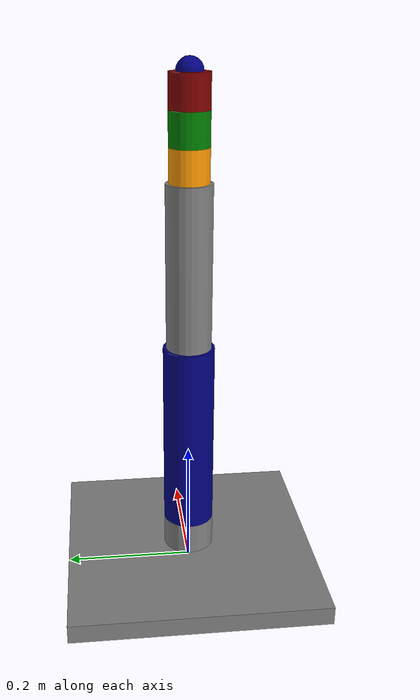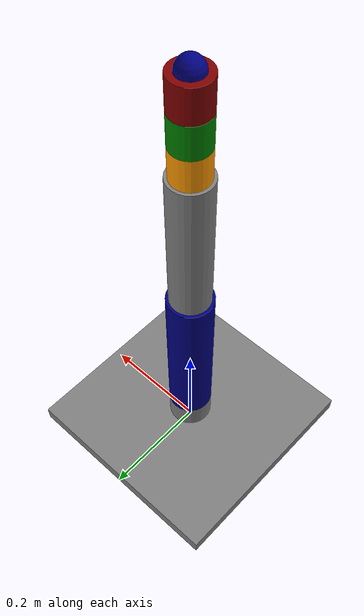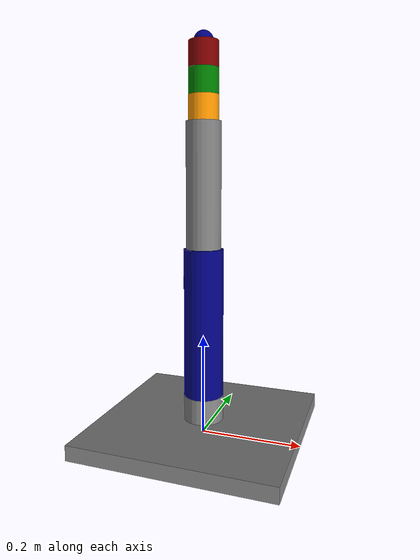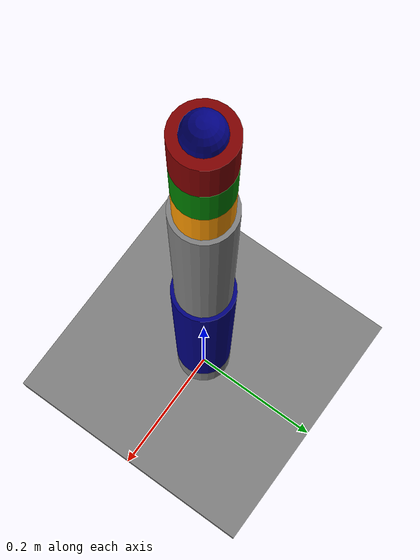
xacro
<?xml version="1.0"?>

<robot name="six_dof_arm" xmlns:xacro="http://www.ros.org/wiki/xacro">
    <xacro:include filename="$(find six_dof_arm)/urdf/common_properties.urdf.xacro"/>
    <xacro:include filename="$(find six_dof_arm)/urdf/six_dof_arm_links.xacro"/>
    <xacro:include filename="$(find six_dof_arm)/urdf/six_dof_arm_gazebo.xacro"/>
</robot>

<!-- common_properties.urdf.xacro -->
<robot  xmlns:xacro="http://www.ros.org/wiki/xacro">

    <material name="green">
        <color rgba="0 0.5 0 1" />
    </material>

    <material name="red">
        <color rgba="0.5 0 0 1" />
    </material>

    <material name="orange">
        <color rgba="1 0.6 0 1" />
    </material>

    <material name="grey">
        <color rgba="0.5 0.5 0.5 1" />
    </material>

    <material name="blue">
        <color rgba="0 0 0.5 1" />
    </material>

    <xacro:macro name="box_inertia" params="m x y z o_xyz o_rpy" >
        <inertial>
            <mass value="${m}" />
            <origin xyz="${o_xyz}" rpy="${o_rpy}" />
            <inertia
                ixx="${(1/12.0)*m*(y**2 + z**2)}"  ixy="0.0"  ixz="0.0"
                iyy="${(1/12.0)*m*(x**2 + z**2)}"  iyz="0.0"
                izz="${(1/12.0)*m*(x**2 + y**2)}"
            />
        </inertial>
    </xacro:macro>

    <xacro:macro name="solid_cylinder_inertia" params="m r h o_xyz o_rpy" >
        <inertial>
            <mass value="${m}" />
            <origin xyz="${o_xyz}" rpy="${o_rpy}" />
            <inertia
                ixx="${(1/12.0)*m*(3*r**2 + h**2)}"  ixy="0.0"  ixz="0.0"
                iyy="${(1/12.0)*m*(3*r**2 + h**2)}"  iyz="0.0"
                izz="${(1/2.0)*m*(r**2)}"
            />
        </inertial>
    </xacro:macro>

    <xacro:macro name="solid_sphere_inertia" params="m r o_xyz o_rpy" >
        <inertial>
            <mass value="${m}" />
            <origin xyz="${o_xyz}" rpy="${o_rpy}" />
            <inertia
                ixx="${(2/5.0)*m*(r**2)}"  ixy="0.0"  ixz="0.0"
                iyy="${(2/5.0)*m*(r**2)}"  iyz="0.0"
                izz="${(2/5.0)*m*(r**2)}"
            />
        </inertial>
    </xacro:macro>
</robot>

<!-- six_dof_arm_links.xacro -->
<robot  xmlns:xacro="http://www.ros.org/wiki/xacro">
    <!-- XACRO definitions -->
    <xacro:property name="base_length" value="0.4"/>
    <xacro:property name="base_width" value="0.4"/>
    <xacro:property name="base_height" value="0.03"/>

    <xacro:property name="link1_length" value="0.05"/>
    <xacro:property name="link1_radius" value="0.04"/>

    <xacro:property name="link2_length" value="0.3"/>
    <xacro:property name="link2_radius" value="0.04"/>

    <xacro:property name="link3_length" value="0.25"/>
    <xacro:property name="link3_radius" value="0.035"/>

    <xacro:property name="link4_length" value="0.05"/>
    <xacro:property name="link4_radius" value="0.03"/>

    <xacro:property name="link5_length" value="0.05"/>
    <xacro:property name="link5_radius" value="0.03"/>

    <xacro:property name="link6_length" value="0.05"/>
    <xacro:property name="link6_radius" value="0.03"/>

    <xacro:property name="end_effector_radius" value="0.02"/>

    <!-- LINKS -->
    <link name="base_footprint"></link>

    <link name="base_link">
        <visual>
            <geometry>
                <box size="${base_length} ${base_width} ${base_height}"/>
            </geometry>
            <origin xyz="0 0 0" rpy="0 0 0"/>
            <material name="grey"/>
        </visual>
        <xacro:box_inertia m="3.0" x="${base_length}" y="${base_width}" z="${base_height}" o_xyz="0 0 0" o_rpy="0 0 0"/>
        <collision>
            <geometry>
                <box size="${base_length} ${base_width} ${base_height}"/>
            </geometry>
            <origin xyz="0 0 0" rpy="0 0 0"/>
        </collision>
    </link>

    <xacro:macro name="cylindrical_link" params="name length radius mass color">
        <link name="${name}">
            <visual>
                <geometry>
                    <cylinder length="${length}" radius="${radius}"/>
                </geometry>
                <origin xyz="0 0 ${length/2}" rpy="0 0 0"/>
                <material name="${color}"/>
            </visual>
            <xacro:solid_cylinder_inertia m="${mass}" r="${radius}" h="${length}" o_xyz="0 0 ${length/2}" o_rpy="0 0 0"/>
            <collision>
                <geometry>
                    <cylinder length="${length}" radius="${radius}"/>
                </geometry>
                <origin xyz="0 0 ${length/2}" rpy="0 0 0"/>
            </collision>
        </link>
    </xacro:macro>

    <xacro:cylindrical_link name="link1" length="${link1_length}" radius="${link1_radius}" mass="1.5" color="grey"/>
    <xacro:cylindrical_link name="link2" length="${link2_length}" radius="${link2_radius}" mass="1.0" color="blue"/>
    <xacro:cylindrical_link name="link3" length="${link3_length}" radius="${link3_radius}" mass="0.8" color="grey"/>
    <xacro:cylindrical_link name="link4" length="${link4_length}" radius="${link4_radius}" mass="0.6" color="orange"/>
    <xacro:cylindrical_link name="link5" length="${link5_length}" radius="${link5_radius}" mass="0.4" color="green"/>
    <xacro:cylindrical_link name="link6" length="${link6_length}" radius="${link6_radius}" mass="0.2" color="red"/>

    <link name="end_effector">
        <visual>
            <geometry>
                <sphere radius="${end_effector_radius}"/>
            </geometry>
            <origin xyz="0 0 0" rpy="0 0 0"/>
            <material name="blue"/>
        </visual>
        <xacro:solid_sphere_inertia m="0.1" r="${end_effector_radius}" o_xyz="0 0 0" o_rpy="0 0 0"/>
        <collision>
            <geometry>
                <sphere radius="${end_effector_radius}"/>
            </geometry>
            <origin xyz="0 0 0" rpy="0 0 0"/>
        </collision>
    </link>

    <!-- JOINTS -->
    <joint name="base_footprint_base" type="fixed">
        <parent link="base_footprint"/>
        <child link="base_link"/>
        <origin xyz="0 0 ${base_height/2.0}" rpy="0 0 0"/>
    </joint>

    <joint name="base_link_link1" type="revolute">
        <parent link="base_link"/>
        <child link="link1"/>
        <origin xyz="0 0 ${base_height/2.0}" rpy="0 0 0"/>
        <axis xyz="0 0 1"/>
        <limit lower="-3.14" upper="3.14" effort="10.0" velocity="1.0"/>
    </joint>

    <joint name="link1_link2" type="revolute">
        <parent link="link1"/>
        <child link="link2"/>
        <origin xyz="0 0 ${link1_length}" rpy="0 0 0"/>
        <axis xyz="0 1 0"/>
        <limit lower="-1.57" upper="1.57" effort="10.0" velocity="1.0"/>
    </joint>

    <joint name="link2_link3" type="revolute">
        <parent link="link2"/>
        <child link="link3"/>
        <origin xyz="0 0 ${link2_length}" rpy="0 0 0"/>
        <axis xyz="0 1 0"/>
        <limit lower="-2.62" upper="2.62" effort="10.0" velocity="1.0"/>
    </joint>

    <joint name="link3_link4" type="revolute">
        <parent link="link3"/>
        <child link="link4"/>
        <origin xyz="0 0 ${link3_length}" rpy="0 0 0"/>
        <axis xyz="0 0 1"/>
        <limit lower="-3.14" upper="3.14" effort="10.0" velocity="1.0"/>
    </joint>

    <joint name="link4_link5" type="revolute">
        <parent link="link4"/>
        <child link="link5"/>
        <origin xyz="0 0 ${link4_length}" rpy="0 0 0"/>
        <axis xyz="0 1 0"/>
        <limit lower="-2.35" upper="2.35" effort="10.0" velocity="1.0"/>
    </joint>

    <joint name="link5_link6" type="revolute">
        <parent link="link5"/>
        <child link="link6"/>
        <origin xyz="0 0 ${link5_length}" rpy="0 0 0"/>
        <axis xyz="1 0 0"/>
        <limit lower="-3.14" upper="3.14" effort="10.0" velocity="1.0"/>
    </joint>

    <joint name="link6_end_effector" type="fixed">
        <parent link="link6"/>
        <child link="end_effector"/>
        <origin xyz="0 0 ${link6_length}" rpy="0 0 0"/>
    </joint>

</robot>
